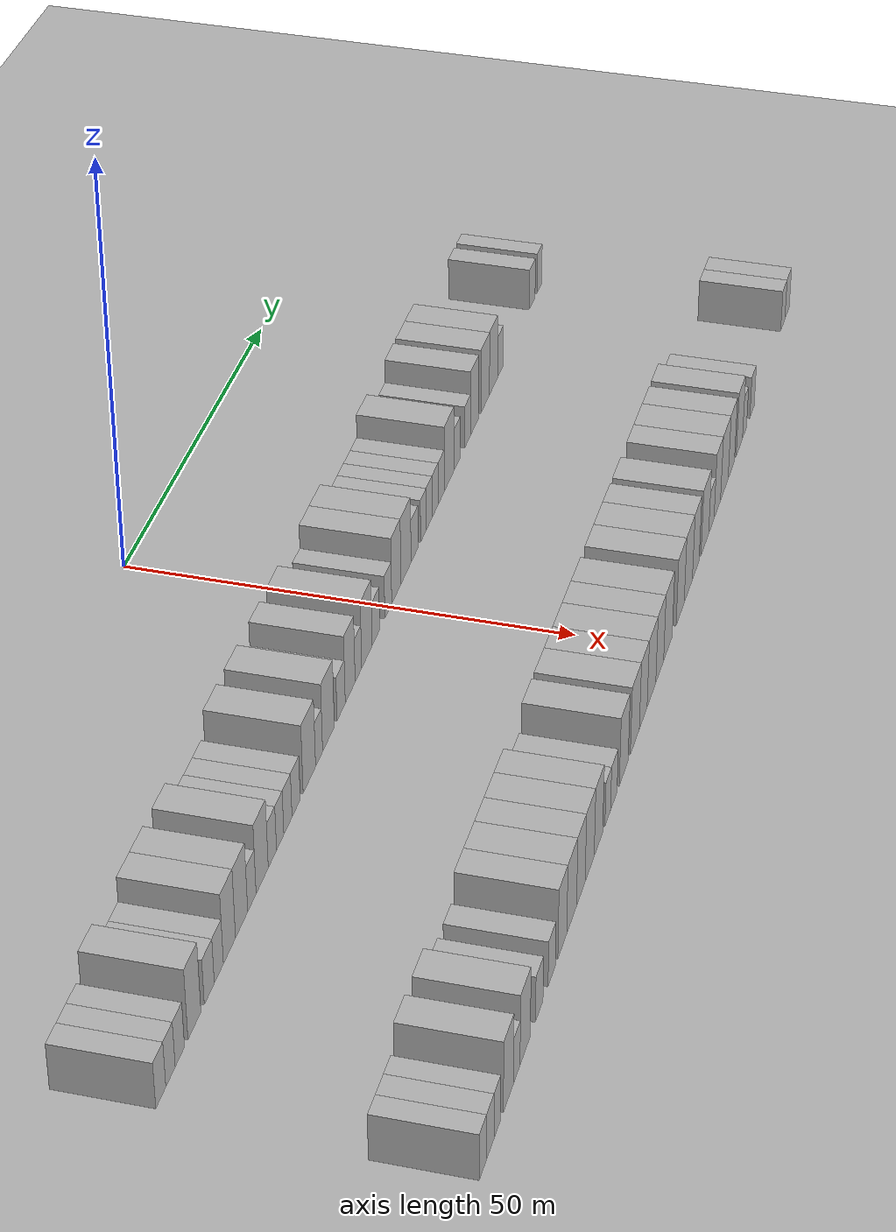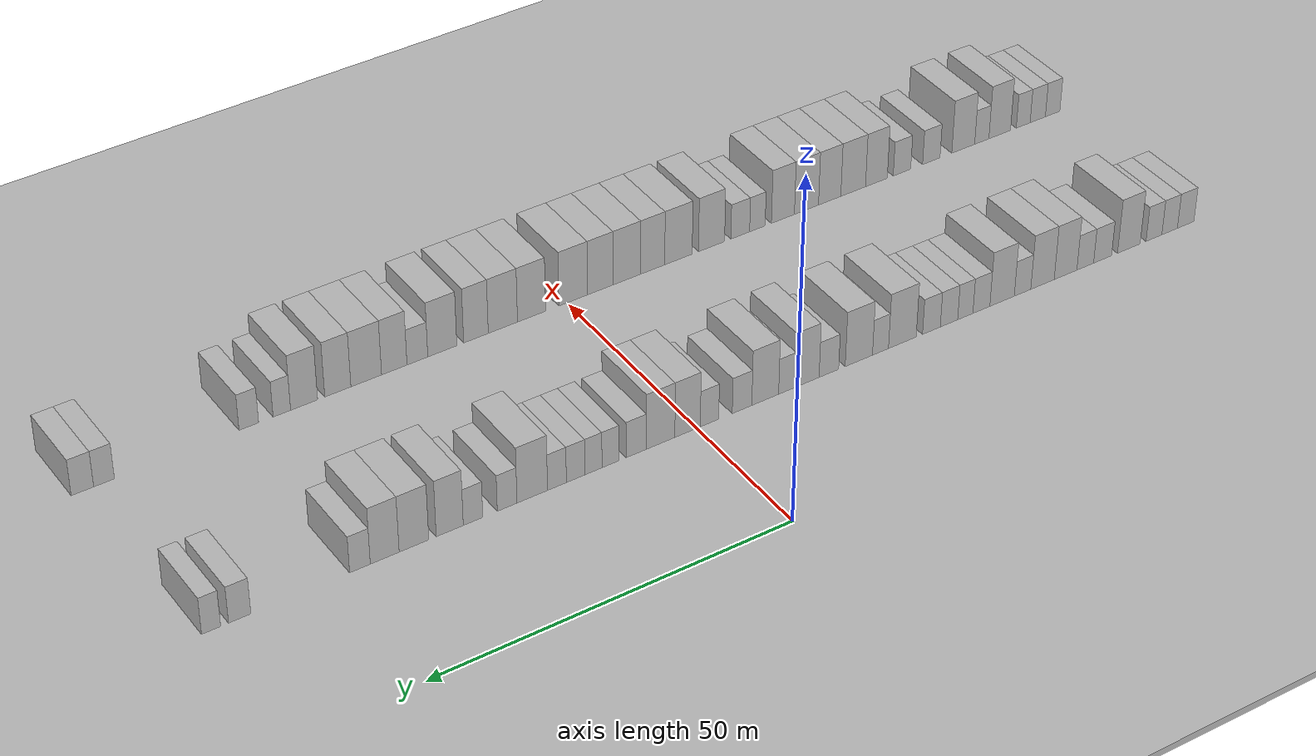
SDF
<sdf version="1.6">
 <world name="default">
  <include><name>ground_plane_1</name><uri>model://HANNAS_ground_plane</uri></include>
  <include>
   <name>ground_plane_2</name>
   <uri>model://HANNAS_ground_plane</uri>
   <pose>100 0 0  0 0 0</pose>
  </include>
  <model name="building_39">
   <static>1</static>
   <pose>25.0000 -77.1736 0 0.000000 0.000000 0.000000</pose>
   <link name="link">
    <pose>0 0 3.00 0 0 0</pose>
    <collision name="collision"><geometry><box><size>10.0000 2.8200 6.0000</size></box></geometry></collision>
    <visual name="visual">
     <cast_shadows>0</cast_shadows>
     <geometry><box><size>10.0000 2.8200 6.0000</size></box></geometry>
     <material>
      <script>
       <uri>model://HANNAS_wall/materials/scripts</uri>
       <uri>model://HANNAS_wall/materials/textures</uri>
       <name>vrc/HANNAS_wall</name>
      </script>
     </material>
    </visual>
   </link>
  </model>
  <model name="building_40">
   <static>1</static>
   <pose>25.0000 -74.4339 0 0.000000 0.000000 0.000000</pose>
   <link name="link">
    <pose>0 0 3.00 0 0 0</pose>
    <collision name="collision"><geometry><box><size>10.0000 2.6593 6.0000</size></box></geometry></collision>
    <visual name="visual">
     <cast_shadows>0</cast_shadows>
     <geometry><box><size>10.0000 2.6593 6.0000</size></box></geometry>
     <material>
      <script>
       <uri>model://HANNAS_wall/materials/scripts</uri>
       <uri>model://HANNAS_wall/materials/textures</uri>
       <name>vrc/HANNAS_wall</name>
      </script>
     </material>
    </visual>
   </link>
  </model>
  <model name="building_41">
   <static>1</static>
   <pose>25.0000 -71.7617 0 0.000000 0.000000 0.000000</pose>
   <link name="link">
    <pose>0 0 3.00 0 0 0</pose>
    <collision name="collision"><geometry><box><size>10.0000 2.6852 6.0000</size></box></geometry></collision>
    <visual name="visual">
     <cast_shadows>0</cast_shadows>
     <geometry><box><size>10.0000 2.6852 6.0000</size></box></geometry>
     <material>
      <script>
       <uri>model://HANNAS_wall/materials/scripts</uri>
       <uri>model://HANNAS_wall/materials/textures</uri>
       <name>vrc/HANNAS_wall</name>
      </script>
     </material>
    </visual>
   </link>
  </model>
  <model name="building_42">
   <static>1</static>
   <pose>25.0000 -67.5142 0 0.000000 0.000000 0.000000</pose>
   <link name="link">
    <pose>0 0 4.50 0 0 0</pose>
    <collision name="collision"><geometry><box><size>10.0000 3.8098 9.0000</size></box></geometry></collision>
    <visual name="visual">
     <cast_shadows>0</cast_shadows>
     <geometry><box><size>10.0000 3.8098 9.0000</size></box></geometry>
     <material>
      <script>
       <uri>model://HANNAS_wall/materials/scripts</uri>
       <uri>model://HANNAS_wall/materials/textures</uri>
       <name>vrc/HANNAS_wall</name>
      </script>
     </material>
    </visual>
   </link>
  </model>
  <model name="building_43">
   <static>1</static>
   <pose>25.0000 -63.1115 0 0.000000 0.000000 0.000000</pose>
   <link name="link">
    <pose>0 0 3.00 0 0 0</pose>
    <collision name="collision"><geometry><box><size>10.0000 2.9955 6.0000</size></box></geometry></collision>
    <visual name="visual">
     <cast_shadows>0</cast_shadows>
     <geometry><box><size>10.0000 2.9955 6.0000</size></box></geometry>
     <material>
      <script>
       <uri>model://HANNAS_wall/materials/scripts</uri>
       <uri>model://HANNAS_wall/materials/textures</uri>
       <name>vrc/HANNAS_wall</name>
      </script>
     </material>
    </visual>
   </link>
  </model>
  <model name="building_44">
   <static>1</static>
   <pose>25.0000 -60.2271 0 0.000000 0.000000 0.000000</pose>
   <link name="link">
    <pose>0 0 3.00 0 0 0</pose>
    <collision name="collision"><geometry><box><size>10.0000 2.7734 6.0000</size></box></geometry></collision>
    <visual name="visual">
     <cast_shadows>0</cast_shadows>
     <geometry><box><size>10.0000 2.7734 6.0000</size></box></geometry>
     <material>
      <script>
       <uri>model://HANNAS_wall/materials/scripts</uri>
       <uri>model://HANNAS_wall/materials/textures</uri>
       <name>vrc/HANNAS_wall</name>
      </script>
     </material>
    </visual>
   </link>
  </model>
  <model name="building_45">
   <static>1</static>
   <pose>25.0000 -56.9690 0 0.000000 0.000000 0.000000</pose>
   <link name="link">
    <pose>0 0 4.50 0 0 0</pose>
    <collision name="collision"><geometry><box><size>10.0000 3.7427 9.0000</size></box></geometry></collision>
    <visual name="visual">
     <cast_shadows>0</cast_shadows>
     <geometry><box><size>10.0000 3.7427 9.0000</size></box></geometry>
     <material>
      <script>
       <uri>model://HANNAS_wall/materials/scripts</uri>
       <uri>model://HANNAS_wall/materials/textures</uri>
       <name>vrc/HANNAS_wall</name>
      </script>
     </material>
    </visual>
   </link>
  </model>
  <model name="building_46">
   <static>1</static>
   <pose>25.0000 -53.1813 0 0.000000 0.000000 0.000000</pose>
   <link name="link">
    <pose>0 0 4.50 0 0 0</pose>
    <collision name="collision"><geometry><box><size>10.0000 3.8327 9.0000</size></box></geometry></collision>
    <visual name="visual">
     <cast_shadows>0</cast_shadows>
     <geometry><box><size>10.0000 3.8327 9.0000</size></box></geometry>
     <material>
      <script>
       <uri>model://HANNAS_wall/materials/scripts</uri>
       <uri>model://HANNAS_wall/materials/textures</uri>
       <name>vrc/HANNAS_wall</name>
      </script>
     </material>
    </visual>
   </link>
  </model>
  <model name="building_47">
   <static>1</static>
   <pose>25.0000 -49.9256 0 0.000000 0.000000 0.000000</pose>
   <link name="link">
    <pose>0 0 3.00 0 0 0</pose>
    <collision name="collision"><geometry><box><size>10.0000 2.6787 6.0000</size></box></geometry></collision>
    <visual name="visual">
     <cast_shadows>0</cast_shadows>
     <geometry><box><size>10.0000 2.6787 6.0000</size></box></geometry>
     <material>
      <script>
       <uri>model://HANNAS_wall/materials/scripts</uri>
       <uri>model://HANNAS_wall/materials/textures</uri>
       <name>vrc/HANNAS_wall</name>
      </script>
     </material>
    </visual>
   </link>
  </model>
  <model name="building_48">
   <static>1</static>
   <pose>25.0000 -46.6115 0 0.000000 0.000000 0.000000</pose>
   <link name="link">
    <pose>0 0 4.50 0 0 0</pose>
    <collision name="collision"><geometry><box><size>10.0000 3.9495 9.0000</size></box></geometry></collision>
    <visual name="visual">
     <cast_shadows>0</cast_shadows>
     <geometry><box><size>10.0000 3.9495 9.0000</size></box></geometry>
     <material>
      <script>
       <uri>model://HANNAS_wall/materials/scripts</uri>
       <uri>model://HANNAS_wall/materials/textures</uri>
       <name>vrc/HANNAS_wall</name>
      </script>
     </material>
    </visual>
   </link>
  </model>
  <model name="building_49">
   <static>1</static>
   <pose>25.0000 -43.2790 0 0.000000 0.000000 0.000000</pose>
   <link name="link">
    <pose>0 0 3.00 0 0 0</pose>
    <collision name="collision"><geometry><box><size>10.0000 2.7157 6.0000</size></box></geometry></collision>
    <visual name="visual">
     <cast_shadows>0</cast_shadows>
     <geometry><box><size>10.0000 2.7157 6.0000</size></box></geometry>
     <material>
      <script>
       <uri>model://HANNAS_wall/materials/scripts</uri>
       <uri>model://HANNAS_wall/materials/textures</uri>
       <name>vrc/HANNAS_wall</name>
      </script>
     </material>
    </visual>
   </link>
  </model>
  <model name="building_50">
   <static>1</static>
   <pose>25.0000 -40.7049 0 0.000000 0.000000 0.000000</pose>
   <link name="link">
    <pose>0 0 3.00 0 0 0</pose>
    <collision name="collision"><geometry><box><size>10.0000 2.4325 6.0000</size></box></geometry></collision>
    <visual name="visual">
     <cast_shadows>0</cast_shadows>
     <geometry><box><size>10.0000 2.4325 6.0000</size></box></geometry>
     <material>
      <script>
       <uri>model://HANNAS_wall/materials/scripts</uri>
       <uri>model://HANNAS_wall/materials/textures</uri>
       <name>vrc/HANNAS_wall</name>
      </script>
     </material>
    </visual>
   </link>
  </model>
  <model name="building_51">
   <static>1</static>
   <pose>25.0000 -38.1090 0 0.000000 0.000000 0.000000</pose>
   <link name="link">
    <pose>0 0 3.00 0 0 0</pose>
    <collision name="collision"><geometry><box><size>10.0000 2.7592 6.0000</size></box></geometry></collision>
    <visual name="visual">
     <cast_shadows>0</cast_shadows>
     <geometry><box><size>10.0000 2.7592 6.0000</size></box></geometry>
     <material>
      <script>
       <uri>model://HANNAS_wall/materials/scripts</uri>
       <uri>model://HANNAS_wall/materials/textures</uri>
       <name>vrc/HANNAS_wall</name>
      </script>
     </material>
    </visual>
   </link>
  </model>
  <model name="building_52">
   <static>1</static>
   <pose>25.0000 -35.3297 0 0.000000 0.000000 0.000000</pose>
   <link name="link">
    <pose>0 0 3.00 0 0 0</pose>
    <collision name="collision"><geometry><box><size>10.0000 2.7994 6.0000</size></box></geometry></collision>
    <visual name="visual">
     <cast_shadows>0</cast_shadows>
     <geometry><box><size>10.0000 2.7994 6.0000</size></box></geometry>
     <material>
      <script>
       <uri>model://HANNAS_wall/materials/scripts</uri>
       <uri>model://HANNAS_wall/materials/textures</uri>
       <name>vrc/HANNAS_wall</name>
      </script>
     </material>
    </visual>
   </link>
  </model>
  <model name="building_53">
   <static>1</static>
   <pose>25.0000 -30.7638 0 0.000000 0.000000 0.000000</pose>
   <link name="link">
    <pose>0 0 4.50 0 0 0</pose>
    <collision name="collision"><geometry><box><size>10.0000 4.3325 9.0000</size></box></geometry></collision>
    <visual name="visual">
     <cast_shadows>0</cast_shadows>
     <geometry><box><size>10.0000 4.3325 9.0000</size></box></geometry>
     <material>
      <script>
       <uri>model://HANNAS_wall/materials/scripts</uri>
       <uri>model://HANNAS_wall/materials/textures</uri>
       <name>vrc/HANNAS_wall</name>
      </script>
     </material>
    </visual>
   </link>
  </model>
  <model name="building_54">
   <static>1</static>
   <pose>25.0000 -27.3550 0 0.000000 0.000000 0.000000</pose>
   <link name="link">
    <pose>0 0 3.00 0 0 0</pose>
    <collision name="collision"><geometry><box><size>10.0000 2.4850 6.0000</size></box></geometry></collision>
    <visual name="visual">
     <cast_shadows>0</cast_shadows>
     <geometry><box><size>10.0000 2.4850 6.0000</size></box></geometry>
     <material>
      <script>
       <uri>model://HANNAS_wall/materials/scripts</uri>
       <uri>model://HANNAS_wall/materials/textures</uri>
       <name>vrc/HANNAS_wall</name>
      </script>
     </material>
    </visual>
   </link>
  </model>
  <model name="building_55">
   <static>1</static>
   <pose>25.0000 -24.0081 0 0.000000 0.000000 0.000000</pose>
   <link name="link">
    <pose>0 0 4.50 0 0 0</pose>
    <collision name="collision"><geometry><box><size>10.0000 4.2089 9.0000</size></box></geometry></collision>
    <visual name="visual">
     <cast_shadows>0</cast_shadows>
     <geometry><box><size>10.0000 4.2089 9.0000</size></box></geometry>
     <material>
      <script>
       <uri>model://HANNAS_wall/materials/scripts</uri>
       <uri>model://HANNAS_wall/materials/textures</uri>
       <name>vrc/HANNAS_wall</name>
      </script>
     </material>
    </visual>
   </link>
  </model>
  <model name="building_56">
   <static>1</static>
   <pose>25.0000 -19.4084 0 0.000000 0.000000 0.000000</pose>
   <link name="link">
    <pose>0 0 3.00 0 0 0</pose>
    <collision name="collision"><geometry><box><size>10.0000 2.9904 6.0000</size></box></geometry></collision>
    <visual name="visual">
     <cast_shadows>0</cast_shadows>
     <geometry><box><size>10.0000 2.9904 6.0000</size></box></geometry>
     <material>
      <script>
       <uri>model://HANNAS_wall/materials/scripts</uri>
       <uri>model://HANNAS_wall/materials/textures</uri>
       <name>vrc/HANNAS_wall</name>
      </script>
     </material>
    </visual>
   </link>
  </model>
  <model name="building_57">
   <static>1</static>
   <pose>25.0000 -16.0879 0 0.000000 0.000000 0.000000</pose>
   <link name="link">
    <pose>0 0 4.50 0 0 0</pose>
    <collision name="collision"><geometry><box><size>10.0000 3.6505 9.0000</size></box></geometry></collision>
    <visual name="visual">
     <cast_shadows>0</cast_shadows>
     <geometry><box><size>10.0000 3.6505 9.0000</size></box></geometry>
     <material>
      <script>
       <uri>model://HANNAS_wall/materials/scripts</uri>
       <uri>model://HANNAS_wall/materials/textures</uri>
       <name>vrc/HANNAS_wall</name>
      </script>
     </material>
    </visual>
   </link>
  </model>
  <model name="building_58">
   <static>1</static>
   <pose>25.0000 -13.0238 0 0.000000 0.000000 0.000000</pose>
   <link name="link">
    <pose>0 0 3.00 0 0 0</pose>
    <collision name="collision"><geometry><box><size>10.0000 2.4776 6.0000</size></box></geometry></collision>
    <visual name="visual">
     <cast_shadows>0</cast_shadows>
     <geometry><box><size>10.0000 2.4776 6.0000</size></box></geometry>
     <material>
      <script>
       <uri>model://HANNAS_wall/materials/scripts</uri>
       <uri>model://HANNAS_wall/materials/textures</uri>
       <name>vrc/HANNAS_wall</name>
      </script>
     </material>
    </visual>
   </link>
  </model>
  <model name="building_59">
   <static>1</static>
   <pose>25.0000 -9.7807 0 0.000000 0.000000 0.000000</pose>
   <link name="link">
    <pose>0 0 4.50 0 0 0</pose>
    <collision name="collision"><geometry><box><size>10.0000 4.0087 9.0000</size></box></geometry></collision>
    <visual name="visual">
     <cast_shadows>0</cast_shadows>
     <geometry><box><size>10.0000 4.0087 9.0000</size></box></geometry>
     <material>
      <script>
       <uri>model://HANNAS_wall/materials/scripts</uri>
       <uri>model://HANNAS_wall/materials/textures</uri>
       <name>vrc/HANNAS_wall</name>
      </script>
     </material>
    </visual>
   </link>
  </model>
  <model name="building_60">
   <static>1</static>
   <pose>25.0000 -6.3212 0 0.000000 0.000000 0.000000</pose>
   <link name="link">
    <pose>0 0 3.00 0 0 0</pose>
    <collision name="collision"><geometry><box><size>10.0000 2.9103 6.0000</size></box></geometry></collision>
    <visual name="visual">
     <cast_shadows>0</cast_shadows>
     <geometry><box><size>10.0000 2.9103 6.0000</size></box></geometry>
     <material>
      <script>
       <uri>model://HANNAS_wall/materials/scripts</uri>
       <uri>model://HANNAS_wall/materials/textures</uri>
       <name>vrc/HANNAS_wall</name>
      </script>
     </material>
    </visual>
   </link>
  </model>
  <model name="building_61">
   <static>1</static>
   <pose>25.0000 -1.5146 0 0.000000 0.000000 0.000000</pose>
   <link name="link">
    <pose>0 0 3.00 0 0 0</pose>
    <collision name="collision"><geometry><box><size>10.0000 2.7028 6.0000</size></box></geometry></collision>
    <visual name="visual">
     <cast_shadows>0</cast_shadows>
     <geometry><box><size>10.0000 2.7028 6.0000</size></box></geometry>
     <material>
      <script>
       <uri>model://HANNAS_wall/materials/scripts</uri>
       <uri>model://HANNAS_wall/materials/textures</uri>
       <name>vrc/HANNAS_wall</name>
      </script>
     </material>
    </visual>
   </link>
  </model>
  <model name="building_62">
   <static>1</static>
   <pose>25.0000 1.6985 0 0.000000 0.000000 0.000000</pose>
   <link name="link">
    <pose>0 0 4.50 0 0 0</pose>
    <collision name="collision"><geometry><box><size>10.0000 3.7234 9.0000</size></box></geometry></collision>
    <visual name="visual">
     <cast_shadows>0</cast_shadows>
     <geometry><box><size>10.0000 3.7234 9.0000</size></box></geometry>
     <material>
      <script>
       <uri>model://HANNAS_wall/materials/scripts</uri>
       <uri>model://HANNAS_wall/materials/textures</uri>
       <name>vrc/HANNAS_wall</name>
      </script>
     </material>
    </visual>
   </link>
  </model>
  <model name="building_63">
   <static>1</static>
   <pose>25.0000 5.6159 0 0.000000 0.000000 0.000000</pose>
   <link name="link">
    <pose>0 0 4.50 0 0 0</pose>
    <collision name="collision"><geometry><box><size>10.0000 4.1115 9.0000</size></box></geometry></collision>
    <visual name="visual">
     <cast_shadows>0</cast_shadows>
     <geometry><box><size>10.0000 4.1115 9.0000</size></box></geometry>
     <material>
      <script>
       <uri>model://HANNAS_wall/materials/scripts</uri>
       <uri>model://HANNAS_wall/materials/textures</uri>
       <name>vrc/HANNAS_wall</name>
      </script>
     </material>
    </visual>
   </link>
  </model>
  <model name="building_64">
   <static>1</static>
   <pose>25.0000 9.1412 0 0.000000 0.000000 0.000000</pose>
   <link name="link">
    <pose>0 0 3.00 0 0 0</pose>
    <collision name="collision"><geometry><box><size>10.0000 2.9391 6.0000</size></box></geometry></collision>
    <visual name="visual">
     <cast_shadows>0</cast_shadows>
     <geometry><box><size>10.0000 2.9391 6.0000</size></box></geometry>
     <material>
      <script>
       <uri>model://HANNAS_wall/materials/scripts</uri>
       <uri>model://HANNAS_wall/materials/textures</uri>
       <name>vrc/HANNAS_wall</name>
      </script>
     </material>
    </visual>
   </link>
  </model>
  <model name="building_65">
   <static>1</static>
   <pose>25.0000 12.8299 0 0.000000 0.000000 0.000000</pose>
   <link name="link">
    <pose>0 0 3.00 0 0 0</pose>
    <collision name="collision"><geometry><box><size>10.0000 2.4383 6.0000</size></box></geometry></collision>
    <visual name="visual">
     <cast_shadows>0</cast_shadows>
     <geometry><box><size>10.0000 2.4383 6.0000</size></box></geometry>
     <material>
      <script>
       <uri>model://HANNAS_wall/materials/scripts</uri>
       <uri>model://HANNAS_wall/materials/textures</uri>
       <name>vrc/HANNAS_wall</name>
      </script>
     </material>
    </visual>
   </link>
  </model>
  <model name="building_66">
   <static>1</static>
   <pose>25.0000 15.2610 0 0.000000 0.000000 0.000000</pose>
   <link name="link">
    <pose>0 0 3.00 0 0 0</pose>
    <collision name="collision"><geometry><box><size>10.0000 2.4239 6.0000</size></box></geometry></collision>
    <visual name="visual">
     <cast_shadows>0</cast_shadows>
     <geometry><box><size>10.0000 2.4239 6.0000</size></box></geometry>
     <material>
      <script>
       <uri>model://HANNAS_wall/materials/scripts</uri>
       <uri>model://HANNAS_wall/materials/textures</uri>
       <name>vrc/HANNAS_wall</name>
      </script>
     </material>
    </visual>
   </link>
  </model>
  <model name="building_67">
   <static>1</static>
   <pose>25.0000 17.7837 0 0.000000 0.000000 0.000000</pose>
   <link name="link">
    <pose>0 0 3.00 0 0 0</pose>
    <collision name="collision"><geometry><box><size>10.0000 2.6217 6.0000</size></box></geometry></collision>
    <visual name="visual">
     <cast_shadows>0</cast_shadows>
     <geometry><box><size>10.0000 2.6217 6.0000</size></box></geometry>
     <material>
      <script>
       <uri>model://HANNAS_wall/materials/scripts</uri>
       <uri>model://HANNAS_wall/materials/textures</uri>
       <name>vrc/HANNAS_wall</name>
      </script>
     </material>
    </visual>
   </link>
  </model>
  <model name="building_68">
   <static>1</static>
   <pose>25.0000 20.4191 0 0.000000 0.000000 0.000000</pose>
   <link name="link">
    <pose>0 0 3.00 0 0 0</pose>
    <collision name="collision"><geometry><box><size>10.0000 2.6491 6.0000</size></box></geometry></collision>
    <visual name="visual">
     <cast_shadows>0</cast_shadows>
     <geometry><box><size>10.0000 2.6491 6.0000</size></box></geometry>
     <material>
      <script>
       <uri>model://HANNAS_wall/materials/scripts</uri>
       <uri>model://HANNAS_wall/materials/textures</uri>
       <name>vrc/HANNAS_wall</name>
      </script>
     </material>
    </visual>
   </link>
  </model>
  <model name="building_69">
   <static>1</static>
   <pose>25.0000 23.8707 0 0.000000 0.000000 0.000000</pose>
   <link name="link">
    <pose>0 0 4.50 0 0 0</pose>
    <collision name="collision"><geometry><box><size>10.0000 4.2541 9.0000</size></box></geometry></collision>
    <visual name="visual">
     <cast_shadows>0</cast_shadows>
     <geometry><box><size>10.0000 4.2541 9.0000</size></box></geometry>
     <material>
      <script>
       <uri>model://HANNAS_wall/materials/scripts</uri>
       <uri>model://HANNAS_wall/materials/textures</uri>
       <name>vrc/HANNAS_wall</name>
      </script>
     </material>
    </visual>
   </link>
  </model>
  <model name="building_70">
   <static>1</static>
   <pose>25.0000 27.3605 0 0.000000 0.000000 0.000000</pose>
   <link name="link">
    <pose>0 0 3.00 0 0 0</pose>
    <collision name="collision"><geometry><box><size>10.0000 2.7255 6.0000</size></box></geometry></collision>
    <visual name="visual">
     <cast_shadows>0</cast_shadows>
     <geometry><box><size>10.0000 2.7255 6.0000</size></box></geometry>
     <material>
      <script>
       <uri>model://HANNAS_wall/materials/scripts</uri>
       <uri>model://HANNAS_wall/materials/textures</uri>
       <name>vrc/HANNAS_wall</name>
      </script>
     </material>
    </visual>
   </link>
  </model>
  <model name="building_71">
   <static>1</static>
   <pose>25.0000 32.0574 0 0.000000 0.000000 0.000000</pose>
   <link name="link">
    <pose>0 0 3.00 0 0 0</pose>
    <collision name="collision"><geometry><box><size>10.0000 2.6683 6.0000</size></box></geometry></collision>
    <visual name="visual">
     <cast_shadows>0</cast_shadows>
     <geometry><box><size>10.0000 2.6683 6.0000</size></box></geometry>
     <material>
      <script>
       <uri>model://HANNAS_wall/materials/scripts</uri>
       <uri>model://HANNAS_wall/materials/textures</uri>
       <name>vrc/HANNAS_wall</name>
      </script>
     </material>
    </visual>
   </link>
  </model>
  <model name="building_72">
   <static>1</static>
   <pose>25.0000 35.2333 0 0.000000 0.000000 0.000000</pose>
   <link name="link">
    <pose>0 0 4.50 0 0 0</pose>
    <collision name="collision"><geometry><box><size>10.0000 3.6836 9.0000</size></box></geometry></collision>
    <visual name="visual">
     <cast_shadows>0</cast_shadows>
     <geometry><box><size>10.0000 3.6836 9.0000</size></box></geometry>
     <material>
      <script>
       <uri>model://HANNAS_wall/materials/scripts</uri>
       <uri>model://HANNAS_wall/materials/textures</uri>
       <name>vrc/HANNAS_wall</name>
      </script>
     </material>
    </visual>
   </link>
  </model>
  <model name="building_73">
   <static>1</static>
   <pose>25.0000 40.0680 0 0.000000 0.000000 0.000000</pose>
   <link name="link">
    <pose>0 0 4.50 0 0 0</pose>
    <collision name="collision"><geometry><box><size>10.0000 3.9857 9.0000</size></box></geometry></collision>
    <visual name="visual">
     <cast_shadows>0</cast_shadows>
     <geometry><box><size>10.0000 3.9857 9.0000</size></box></geometry>
     <material>
      <script>
       <uri>model://HANNAS_wall/materials/scripts</uri>
       <uri>model://HANNAS_wall/materials/textures</uri>
       <name>vrc/HANNAS_wall</name>
      </script>
     </material>
    </visual>
   </link>
  </model>
  <model name="building_74">
   <static>1</static>
   <pose>25.0000 43.9865 0 0.000000 0.000000 0.000000</pose>
   <link name="link">
    <pose>0 0 4.50 0 0 0</pose>
    <collision name="collision"><geometry><box><size>10.0000 3.8513 9.0000</size></box></geometry></collision>
    <visual name="visual">
     <cast_shadows>0</cast_shadows>
     <geometry><box><size>10.0000 3.8513 9.0000</size></box></geometry>
     <material>
      <script>
       <uri>model://HANNAS_wall/materials/scripts</uri>
       <uri>model://HANNAS_wall/materials/textures</uri>
       <name>vrc/HANNAS_wall</name>
      </script>
     </material>
    </visual>
   </link>
  </model>
  <model name="building_75">
   <static>1</static>
   <pose>25.0000 47.2822 0 0.000000 0.000000 0.000000</pose>
   <link name="link">
    <pose>0 0 3.00 0 0 0</pose>
    <collision name="collision"><geometry><box><size>10.0000 2.7402 6.0000</size></box></geometry></collision>
    <visual name="visual">
     <cast_shadows>0</cast_shadows>
     <geometry><box><size>10.0000 2.7402 6.0000</size></box></geometry>
     <material>
      <script>
       <uri>model://HANNAS_wall/materials/scripts</uri>
       <uri>model://HANNAS_wall/materials/textures</uri>
       <name>vrc/HANNAS_wall</name>
      </script>
     </material>
    </visual>
   </link>
  </model>
  <model name="building_76">
   <static>1</static>
   <pose>25.0000 62.9300 0 0.000000 0.000000 0.000000</pose>
   <link name="link">
    <pose>0 0 3.00 0 0 0</pose>
    <collision name="collision"><geometry><box><size>10.0000 2.8518 6.0000</size></box></geometry></collision>
    <visual name="visual">
     <cast_shadows>0</cast_shadows>
     <geometry><box><size>10.0000 2.8518 6.0000</size></box></geometry>
     <material>
      <script>
       <uri>model://HANNAS_wall/materials/scripts</uri>
       <uri>model://HANNAS_wall/materials/textures</uri>
       <name>vrc/HANNAS_wall</name>
      </script>
     </material>
    </visual>
   </link>
  </model>
  <model name="building_77">
   <static>1</static>
   <pose>25.0000 66.5714 0 0.000000 0.000000 0.000000</pose>
   <link name="link">
    <pose>0 0 3.00 0 0 0</pose>
    <collision name="collision"><geometry><box><size>10.0000 2.4311 6.0000</size></box></geometry></collision>
    <visual name="visual">
     <cast_shadows>0</cast_shadows>
     <geometry><box><size>10.0000 2.4311 6.0000</size></box></geometry>
     <material>
      <script>
       <uri>model://HANNAS_wall/materials/scripts</uri>
       <uri>model://HANNAS_wall/materials/textures</uri>
       <name>vrc/HANNAS_wall</name>
      </script>
     </material>
    </visual>
   </link>
  </model>
  <model name="building_155">
   <static>1</static>
   <pose>55.0000 -78.7051 0 0.000000 0.000000 0.000000</pose>
   <link name="link">
    <pose>0 0 3.00 0 0 0</pose>
    <collision name="collision"><geometry><box><size>10.0000 2.5433 6.0000</size></box></geometry></collision>
    <visual name="visual">
     <cast_shadows>0</cast_shadows>
     <geometry><box><size>10.0000 2.5433 6.0000</size></box></geometry>
     <material>
      <script>
       <uri>model://HANNAS_wall/materials/scripts</uri>
       <uri>model://HANNAS_wall/materials/textures</uri>
       <name>vrc/HANNAS_wall</name>
      </script>
     </material>
    </visual>
   </link>
  </model>
  <model name="building_156">
   <static>1</static>
   <pose>55.0000 -76.0979 0 0.000000 0.000000 0.000000</pose>
   <link name="link">
    <pose>0 0 3.00 0 0 0</pose>
    <collision name="collision"><geometry><box><size>10.0000 2.6710 6.0000</size></box></geometry></collision>
    <visual name="visual">
     <cast_shadows>0</cast_shadows>
     <geometry><box><size>10.0000 2.6710 6.0000</size></box></geometry>
     <material>
      <script>
       <uri>model://HANNAS_wall/materials/scripts</uri>
       <uri>model://HANNAS_wall/materials/textures</uri>
       <name>vrc/HANNAS_wall</name>
      </script>
     </material>
    </visual>
   </link>
  </model>
  <model name="building_157">
   <static>1</static>
   <pose>55.0000 -73.5586 0 0.000000 0.000000 0.000000</pose>
   <link name="link">
    <pose>0 0 3.00 0 0 0</pose>
    <collision name="collision"><geometry><box><size>10.0000 2.4077 6.0000</size></box></geometry></collision>
    <visual name="visual">
     <cast_shadows>0</cast_shadows>
     <geometry><box><size>10.0000 2.4077 6.0000</size></box></geometry>
     <material>
      <script>
       <uri>model://HANNAS_wall/materials/scripts</uri>
       <uri>model://HANNAS_wall/materials/textures</uri>
       <name>vrc/HANNAS_wall</name>
      </script>
     </material>
    </visual>
   </link>
  </model>
  <model name="building_158">
   <static>1</static>
   <pose>55.0000 -69.4868 0 0.000000 0.000000 0.000000</pose>
   <link name="link">
    <pose>0 0 4.50 0 0 0</pose>
    <collision name="collision"><geometry><box><size>10.0000 3.7358 9.0000</size></box></geometry></collision>
    <visual name="visual">
     <cast_shadows>0</cast_shadows>
     <geometry><box><size>10.0000 3.7358 9.0000</size></box></geometry>
     <material>
      <script>
       <uri>model://HANNAS_wall/materials/scripts</uri>
       <uri>model://HANNAS_wall/materials/textures</uri>
       <name>vrc/HANNAS_wall</name>
      </script>
     </material>
    </visual>
   </link>
  </model>
  <model name="building_159">
   <static>1</static>
   <pose>55.0000 -66.4008 0 0.000000 0.000000 0.000000</pose>
   <link name="link">
    <pose>0 0 3.00 0 0 0</pose>
    <collision name="collision"><geometry><box><size>10.0000 2.4362 6.0000</size></box></geometry></collision>
    <visual name="visual">
     <cast_shadows>0</cast_shadows>
     <geometry><box><size>10.0000 2.4362 6.0000</size></box></geometry>
     <material>
      <script>
       <uri>model://HANNAS_wall/materials/scripts</uri>
       <uri>model://HANNAS_wall/materials/textures</uri>
       <name>vrc/HANNAS_wall</name>
      </script>
     </material>
    </visual>
   </link>
  </model>
  <model name="building_160">
   <static>1</static>
   <pose>55.0000 -63.2286 0 0.000000 0.000000 0.000000</pose>
   <link name="link">
    <pose>0 0 4.50 0 0 0</pose>
    <collision name="collision"><geometry><box><size>10.0000 3.9082 9.0000</size></box></geometry></collision>
    <visual name="visual">
     <cast_shadows>0</cast_shadows>
     <geometry><box><size>10.0000 3.9082 9.0000</size></box></geometry>
     <material>
      <script>
       <uri>model://HANNAS_wall/materials/scripts</uri>
       <uri>model://HANNAS_wall/materials/textures</uri>
       <name>vrc/HANNAS_wall</name>
      </script>
     </material>
    </visual>
   </link>
  </model>
  <model name="building_161">
   <static>1</static>
   <pose>55.0000 -57.8059 0 0.000000 0.000000 0.000000</pose>
   <link name="link">
    <pose>0 0 3.00 0 0 0</pose>
    <collision name="collision"><geometry><box><size>10.0000 2.9372 6.0000</size></box></geometry></collision>
    <visual name="visual">
     <cast_shadows>0</cast_shadows>
     <geometry><box><size>10.0000 2.9372 6.0000</size></box></geometry>
     <material>
      <script>
       <uri>model://HANNAS_wall/materials/scripts</uri>
       <uri>model://HANNAS_wall/materials/textures</uri>
       <name>vrc/HANNAS_wall</name>
      </script>
     </material>
    </visual>
   </link>
  </model>
  <model name="building_162">
   <static>1</static>
   <pose>55.0000 -52.8782 0 0.000000 0.000000 0.000000</pose>
   <link name="link">
    <pose>0 0 3.00 0 0 0</pose>
    <collision name="collision"><geometry><box><size>10.0000 2.9182 6.0000</size></box></geometry></collision>
    <visual name="visual">
     <cast_shadows>0</cast_shadows>
     <geometry><box><size>10.0000 2.9182 6.0000</size></box></geometry>
     <material>
      <script>
       <uri>model://HANNAS_wall/materials/scripts</uri>
       <uri>model://HANNAS_wall/materials/textures</uri>
       <name>vrc/HANNAS_wall</name>
      </script>
     </material>
    </visual>
   </link>
  </model>
  <model name="building_163">
   <static>1</static>
   <pose>55.0000 -48.6096 0 0.000000 0.000000 0.000000</pose>
   <link name="link">
    <pose>0 0 4.50 0 0 0</pose>
    <collision name="collision"><geometry><box><size>10.0000 3.6191 9.0000</size></box></geometry></collision>
    <visual name="visual">
     <cast_shadows>0</cast_shadows>
     <geometry><box><size>10.0000 3.6191 9.0000</size></box></geometry>
     <material>
      <script>
       <uri>model://HANNAS_wall/materials/scripts</uri>
       <uri>model://HANNAS_wall/materials/textures</uri>
       <name>vrc/HANNAS_wall</name>
      </script>
     </material>
    </visual>
   </link>
  </model>
  <model name="building_164">
   <static>1</static>
   <pose>55.0000 -44.7668 0 0.000000 0.000000 0.000000</pose>
   <link name="link">
    <pose>0 0 4.50 0 0 0</pose>
    <collision name="collision"><geometry><box><size>10.0000 4.0664 9.0000</size></box></geometry></collision>
    <visual name="visual">
     <cast_shadows>0</cast_shadows>
     <geometry><box><size>10.0000 4.0664 9.0000</size></box></geometry>
     <material>
      <script>
       <uri>model://HANNAS_wall/materials/scripts</uri>
       <uri>model://HANNAS_wall/materials/textures</uri>
       <name>vrc/HANNAS_wall</name>
      </script>
     </material>
    </visual>
   </link>
  </model>
  <model name="building_165">
   <static>1</static>
   <pose>55.0000 -40.9135 0 0.000000 0.000000 0.000000</pose>
   <link name="link">
    <pose>0 0 4.50 0 0 0</pose>
    <collision name="collision"><geometry><box><size>10.0000 3.6403 9.0000</size></box></geometry></collision>
    <visual name="visual">
     <cast_shadows>0</cast_shadows>
     <geometry><box><size>10.0000 3.6403 9.0000</size></box></geometry>
     <material>
      <script>
       <uri>model://HANNAS_wall/materials/scripts</uri>
       <uri>model://HANNAS_wall/materials/textures</uri>
       <name>vrc/HANNAS_wall</name>
      </script>
     </material>
    </visual>
   </link>
  </model>
  <model name="building_166">
   <static>1</static>
   <pose>55.0000 -37.1364 0 0.000000 0.000000 0.000000</pose>
   <link name="link">
    <pose>0 0 4.50 0 0 0</pose>
    <collision name="collision"><geometry><box><size>10.0000 3.9138 9.0000</size></box></geometry></collision>
    <visual name="visual">
     <cast_shadows>0</cast_shadows>
     <geometry><box><size>10.0000 3.9138 9.0000</size></box></geometry>
     <material>
      <script>
       <uri>model://HANNAS_wall/materials/scripts</uri>
       <uri>model://HANNAS_wall/materials/textures</uri>
       <name>vrc/HANNAS_wall</name>
      </script>
     </material>
    </visual>
   </link>
  </model>
  <model name="building_167">
   <static>1</static>
   <pose>55.0000 -33.3260 0 0.000000 0.000000 0.000000</pose>
   <link name="link">
    <pose>0 0 4.50 0 0 0</pose>
    <collision name="collision"><geometry><box><size>10.0000 3.7072 9.0000</size></box></geometry></collision>
    <visual name="visual">
     <cast_shadows>0</cast_shadows>
     <geometry><box><size>10.0000 3.7072 9.0000</size></box></geometry>
     <material>
      <script>
       <uri>model://HANNAS_wall/materials/scripts</uri>
       <uri>model://HANNAS_wall/materials/textures</uri>
       <name>vrc/HANNAS_wall</name>
      </script>
     </material>
    </visual>
   </link>
  </model>
  <model name="building_168">
   <static>1</static>
   <pose>55.0000 -29.2318 0 0.000000 0.000000 0.000000</pose>
   <link name="link">
    <pose>0 0 3.00 0 0 0</pose>
    <collision name="collision"><geometry><box><size>10.0000 2.4812 6.0000</size></box></geometry></collision>
    <visual name="visual">
     <cast_shadows>0</cast_shadows>
     <geometry><box><size>10.0000 2.4812 6.0000</size></box></geometry>
     <material>
      <script>
       <uri>model://HANNAS_wall/materials/scripts</uri>
       <uri>model://HANNAS_wall/materials/textures</uri>
       <name>vrc/HANNAS_wall</name>
      </script>
     </material>
    </visual>
   </link>
  </model>
  <model name="building_169">
   <static>1</static>
   <pose>55.0000 -26.5044 0 0.000000 0.000000 0.000000</pose>
   <link name="link">
    <pose>0 0 3.00 0 0 0</pose>
    <collision name="collision"><geometry><box><size>10.0000 2.9734 6.0000</size></box></geometry></collision>
    <visual name="visual">
     <cast_shadows>0</cast_shadows>
     <geometry><box><size>10.0000 2.9734 6.0000</size></box></geometry>
     <material>
      <script>
       <uri>model://HANNAS_wall/materials/scripts</uri>
       <uri>model://HANNAS_wall/materials/textures</uri>
       <name>vrc/HANNAS_wall</name>
      </script>
     </material>
    </visual>
   </link>
  </model>
  <model name="building_170">
   <static>1</static>
   <pose>55.0000 -21.9691 0 0.000000 0.000000 0.000000</pose>
   <link name="link">
    <pose>0 0 4.50 0 0 0</pose>
    <collision name="collision"><geometry><box><size>10.0000 4.0972 9.0000</size></box></geometry></collision>
    <visual name="visual">
     <cast_shadows>0</cast_shadows>
     <geometry><box><size>10.0000 4.0972 9.0000</size></box></geometry>
     <material>
      <script>
       <uri>model://HANNAS_wall/materials/scripts</uri>
       <uri>model://HANNAS_wall/materials/textures</uri>
       <name>vrc/HANNAS_wall</name>
      </script>
     </material>
    </visual>
   </link>
  </model>
  <model name="building_171">
   <static>1</static>
   <pose>55.0000 -16.7852 0 0.000000 0.000000 0.000000</pose>
   <link name="link">
    <pose>0 0 4.50 0 0 0</pose>
    <collision name="collision"><geometry><box><size>10.0000 4.2705 9.0000</size></box></geometry></collision>
    <visual name="visual">
     <cast_shadows>0</cast_shadows>
     <geometry><box><size>10.0000 4.2705 9.0000</size></box></geometry>
     <material>
      <script>
       <uri>model://HANNAS_wall/materials/scripts</uri>
       <uri>model://HANNAS_wall/materials/textures</uri>
       <name>vrc/HANNAS_wall</name>
      </script>
     </material>
    </visual>
   </link>
  </model>
  <model name="building_172">
   <static>1</static>
   <pose>55.0000 -12.7933 0 0.000000 0.000000 0.000000</pose>
   <link name="link">
    <pose>0 0 4.50 0 0 0</pose>
    <collision name="collision"><geometry><box><size>10.0000 3.7133 9.0000</size></box></geometry></collision>
    <visual name="visual">
     <cast_shadows>0</cast_shadows>
     <geometry><box><size>10.0000 3.7133 9.0000</size></box></geometry>
     <material>
      <script>
       <uri>model://HANNAS_wall/materials/scripts</uri>
       <uri>model://HANNAS_wall/materials/textures</uri>
       <name>vrc/HANNAS_wall</name>
      </script>
     </material>
    </visual>
   </link>
  </model>
  <model name="building_173">
   <static>1</static>
   <pose>55.0000 -8.8179 0 0.000000 0.000000 0.000000</pose>
   <link name="link">
    <pose>0 0 4.50 0 0 0</pose>
    <collision name="collision"><geometry><box><size>10.0000 4.2374 9.0000</size></box></geometry></collision>
    <visual name="visual">
     <cast_shadows>0</cast_shadows>
     <geometry><box><size>10.0000 4.2374 9.0000</size></box></geometry>
     <material>
      <script>
       <uri>model://HANNAS_wall/materials/scripts</uri>
       <uri>model://HANNAS_wall/materials/textures</uri>
       <name>vrc/HANNAS_wall</name>
      </script>
     </material>
    </visual>
   </link>
  </model>
  <model name="building_174">
   <static>1</static>
   <pose>55.0000 -4.7499 0 0.000000 0.000000 0.000000</pose>
   <link name="link">
    <pose>0 0 4.50 0 0 0</pose>
    <collision name="collision"><geometry><box><size>10.0000 3.8986 9.0000</size></box></geometry></collision>
    <visual name="visual">
     <cast_shadows>0</cast_shadows>
     <geometry><box><size>10.0000 3.8986 9.0000</size></box></geometry>
     <material>
      <script>
       <uri>model://HANNAS_wall/materials/scripts</uri>
       <uri>model://HANNAS_wall/materials/textures</uri>
       <name>vrc/HANNAS_wall</name>
      </script>
     </material>
    </visual>
   </link>
  </model>
  <model name="building_175">
   <static>1</static>
   <pose>55.0000 -0.6267 0 0.000000 0.000000 0.000000</pose>
   <link name="link">
    <pose>0 0 4.50 0 0 0</pose>
    <collision name="collision"><geometry><box><size>10.0000 4.3479 9.0000</size></box></geometry></collision>
    <visual name="visual">
     <cast_shadows>0</cast_shadows>
     <geometry><box><size>10.0000 4.3479 9.0000</size></box></geometry>
     <material>
      <script>
       <uri>model://HANNAS_wall/materials/scripts</uri>
       <uri>model://HANNAS_wall/materials/textures</uri>
       <name>vrc/HANNAS_wall</name>
      </script>
     </material>
    </visual>
   </link>
  </model>
  <model name="building_176">
   <static>1</static>
   <pose>55.0000 5.6383 0 0.000000 0.000000 0.000000</pose>
   <link name="link">
    <pose>0 0 4.50 0 0 0</pose>
    <collision name="collision"><geometry><box><size>10.0000 4.1820 9.0000</size></box></geometry></collision>
    <visual name="visual">
     <cast_shadows>0</cast_shadows>
     <geometry><box><size>10.0000 4.1820 9.0000</size></box></geometry>
     <material>
      <script>
       <uri>model://HANNAS_wall/materials/scripts</uri>
       <uri>model://HANNAS_wall/materials/textures</uri>
       <name>vrc/HANNAS_wall</name>
      </script>
     </material>
    </visual>
   </link>
  </model>
  <model name="building_177">
   <static>1</static>
   <pose>55.0000 9.8876 0 0.000000 0.000000 0.000000</pose>
   <link name="link">
    <pose>0 0 4.50 0 0 0</pose>
    <collision name="collision"><geometry><box><size>10.0000 4.3167 9.0000</size></box></geometry></collision>
    <visual name="visual">
     <cast_shadows>0</cast_shadows>
     <geometry><box><size>10.0000 4.3167 9.0000</size></box></geometry>
     <material>
      <script>
       <uri>model://HANNAS_wall/materials/scripts</uri>
       <uri>model://HANNAS_wall/materials/textures</uri>
       <name>vrc/HANNAS_wall</name>
      </script>
     </material>
    </visual>
   </link>
  </model>
  <model name="building_178">
   <static>1</static>
   <pose>55.0000 13.8519 0 0.000000 0.000000 0.000000</pose>
   <link name="link">
    <pose>0 0 4.50 0 0 0</pose>
    <collision name="collision"><geometry><box><size>10.0000 3.6118 9.0000</size></box></geometry></collision>
    <visual name="visual">
     <cast_shadows>0</cast_shadows>
     <geometry><box><size>10.0000 3.6118 9.0000</size></box></geometry>
     <material>
      <script>
       <uri>model://HANNAS_wall/materials/scripts</uri>
       <uri>model://HANNAS_wall/materials/textures</uri>
       <name>vrc/HANNAS_wall</name>
      </script>
     </material>
    </visual>
   </link>
  </model>
  <model name="building_179">
   <static>1</static>
   <pose>55.0000 18.7655 0 0.000000 0.000000 0.000000</pose>
   <link name="link">
    <pose>0 0 4.50 0 0 0</pose>
    <collision name="collision"><geometry><box><size>10.0000 4.2154 9.0000</size></box></geometry></collision>
    <visual name="visual">
     <cast_shadows>0</cast_shadows>
     <geometry><box><size>10.0000 4.2154 9.0000</size></box></geometry>
     <material>
      <script>
       <uri>model://HANNAS_wall/materials/scripts</uri>
       <uri>model://HANNAS_wall/materials/textures</uri>
       <name>vrc/HANNAS_wall</name>
      </script>
     </material>
    </visual>
   </link>
  </model>
  <model name="building_180">
   <static>1</static>
   <pose>55.0000 22.3718 0 0.000000 0.000000 0.000000</pose>
   <link name="link">
    <pose>0 0 3.00 0 0 0</pose>
    <collision name="collision"><geometry><box><size>10.0000 2.9973 6.0000</size></box></geometry></collision>
    <visual name="visual">
     <cast_shadows>0</cast_shadows>
     <geometry><box><size>10.0000 2.9973 6.0000</size></box></geometry>
     <material>
      <script>
       <uri>model://HANNAS_wall/materials/scripts</uri>
       <uri>model://HANNAS_wall/materials/textures</uri>
       <name>vrc/HANNAS_wall</name>
      </script>
     </material>
    </visual>
   </link>
  </model>
  <model name="building_181">
   <static>1</static>
   <pose>55.0000 25.6865 0 0.000000 0.000000 0.000000</pose>
   <link name="link">
    <pose>0 0 4.50 0 0 0</pose>
    <collision name="collision"><geometry><box><size>10.0000 3.6320 9.0000</size></box></geometry></collision>
    <visual name="visual">
     <cast_shadows>0</cast_shadows>
     <geometry><box><size>10.0000 3.6320 9.0000</size></box></geometry>
     <material>
      <script>
       <uri>model://HANNAS_wall/materials/scripts</uri>
       <uri>model://HANNAS_wall/materials/textures</uri>
       <name>vrc/HANNAS_wall</name>
      </script>
     </material>
    </visual>
   </link>
  </model>
  <model name="building_182">
   <static>1</static>
   <pose>55.0000 29.6797 0 0.000000 0.000000 0.000000</pose>
   <link name="link">
    <pose>0 0 4.50 0 0 0</pose>
    <collision name="collision"><geometry><box><size>10.0000 4.3545 9.0000</size></box></geometry></collision>
    <visual name="visual">
     <cast_shadows>0</cast_shadows>
     <geometry><box><size>10.0000 4.3545 9.0000</size></box></geometry>
     <material>
      <script>
       <uri>model://HANNAS_wall/materials/scripts</uri>
       <uri>model://HANNAS_wall/materials/textures</uri>
       <name>vrc/HANNAS_wall</name>
      </script>
     </material>
    </visual>
   </link>
  </model>
  <model name="building_183">
   <static>1</static>
   <pose>55.0000 33.6987 0 0.000000 0.000000 0.000000</pose>
   <link name="link">
    <pose>0 0 4.50 0 0 0</pose>
    <collision name="collision"><geometry><box><size>10.0000 3.6835 9.0000</size></box></geometry></collision>
    <visual name="visual">
     <cast_shadows>0</cast_shadows>
     <geometry><box><size>10.0000 3.6835 9.0000</size></box></geometry>
     <material>
      <script>
       <uri>model://HANNAS_wall/materials/scripts</uri>
       <uri>model://HANNAS_wall/materials/textures</uri>
       <name>vrc/HANNAS_wall</name>
      </script>
     </material>
    </visual>
   </link>
  </model>
  <model name="building_184">
   <static>1</static>
   <pose>55.0000 38.4244 0 0.000000 0.000000 0.000000</pose>
   <link name="link">
    <pose>0 0 4.50 0 0 0</pose>
    <collision name="collision"><geometry><box><size>10.0000 3.7680 9.0000</size></box></geometry></collision>
    <visual name="visual">
     <cast_shadows>0</cast_shadows>
     <geometry><box><size>10.0000 3.7680 9.0000</size></box></geometry>
     <material>
      <script>
       <uri>model://HANNAS_wall/materials/scripts</uri>
       <uri>model://HANNAS_wall/materials/textures</uri>
       <name>vrc/HANNAS_wall</name>
      </script>
     </material>
    </visual>
   </link>
  </model>
  <model name="building_185">
   <static>1</static>
   <pose>55.0000 41.5192 0 0.000000 0.000000 0.000000</pose>
   <link name="link">
    <pose>0 0 3.00 0 0 0</pose>
    <collision name="collision"><geometry><box><size>10.0000 2.4216 6.0000</size></box></geometry></collision>
    <visual name="visual">
     <cast_shadows>0</cast_shadows>
     <geometry><box><size>10.0000 2.4216 6.0000</size></box></geometry>
     <material>
      <script>
       <uri>model://HANNAS_wall/materials/scripts</uri>
       <uri>model://HANNAS_wall/materials/textures</uri>
       <name>vrc/HANNAS_wall</name>
      </script>
     </material>
    </visual>
   </link>
  </model>
  <model name="building_186">
   <static>1</static>
   <pose>55.0000 46.0753 0 0.000000 0.000000 0.000000</pose>
   <link name="link">
    <pose>0 0 3.00 0 0 0</pose>
    <collision name="collision"><geometry><box><size>10.0000 2.6906 6.0000</size></box></geometry></collision>
    <visual name="visual">
     <cast_shadows>0</cast_shadows>
     <geometry><box><size>10.0000 2.6906 6.0000</size></box></geometry>
     <material>
      <script>
       <uri>model://HANNAS_wall/materials/scripts</uri>
       <uri>model://HANNAS_wall/materials/textures</uri>
       <name>vrc/HANNAS_wall</name>
      </script>
     </material>
    </visual>
   </link>
  </model>
  <model name="building_187">
   <static>1</static>
   <pose>55.0000 65.5232 0 0.000000 0.000000 0.000000</pose>
   <link name="link">
    <pose>0 0 3.00 0 0 0</pose>
    <collision name="collision"><geometry><box><size>10.0000 2.7351 6.0000</size></box></geometry></collision>
    <visual name="visual">
     <cast_shadows>0</cast_shadows>
     <geometry><box><size>10.0000 2.7351 6.0000</size></box></geometry>
     <material>
      <script>
       <uri>model://HANNAS_wall/materials/scripts</uri>
       <uri>model://HANNAS_wall/materials/textures</uri>
       <name>vrc/HANNAS_wall</name>
      </script>
     </material>
    </visual>
   </link>
  </model>
  <model name="building_188">
   <static>1</static>
   <pose>55.0000 68.3637 0 0.000000 0.000000 0.000000</pose>
   <link name="link">
    <pose>0 0 3.00 0 0 0</pose>
    <collision name="collision"><geometry><box><size>10.0000 2.9459 6.0000</size></box></geometry></collision>
    <visual name="visual">
     <cast_shadows>0</cast_shadows>
     <geometry><box><size>10.0000 2.9459 6.0000</size></box></geometry>
     <material>
      <script>
       <uri>model://HANNAS_wall/materials/scripts</uri>
       <uri>model://HANNAS_wall/materials/textures</uri>
       <name>vrc/HANNAS_wall</name>
      </script>
     </material>
    </visual>
   </link>
  </model>
 </world>
</sdf>
